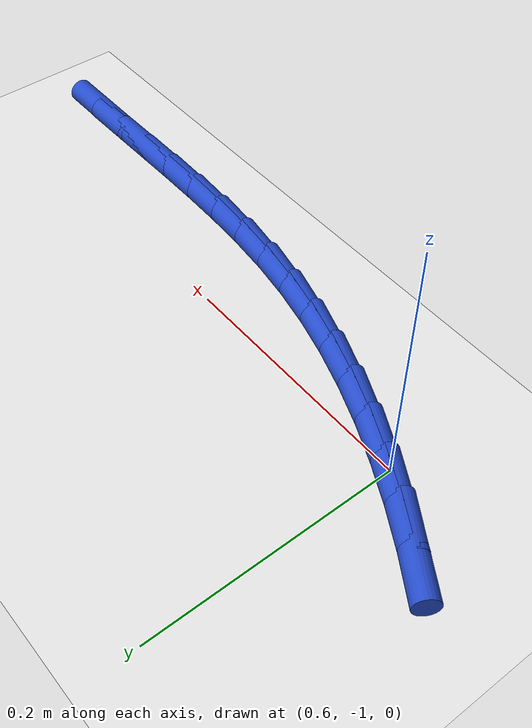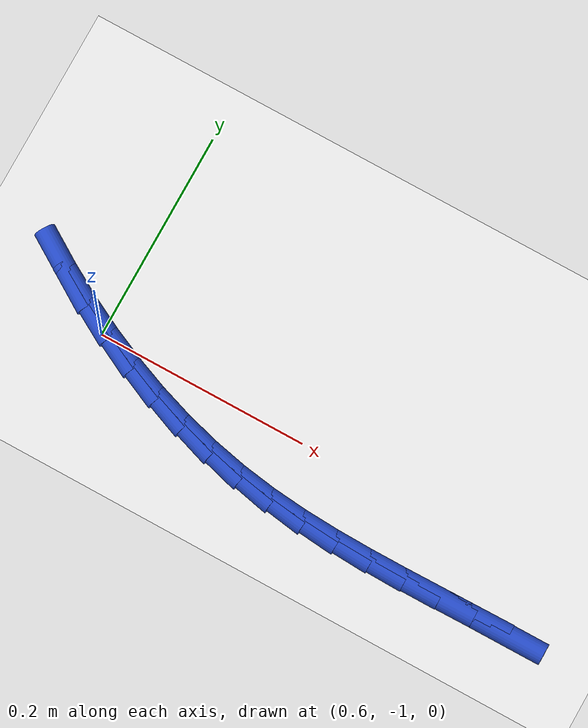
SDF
<sdf version="1.6">
 <world name="default">
  <model name="ground_plane">
   <static>1</static>
   <link name="link">
    <collision name="collision">
     <geometry><plane><normal>0 0 1</normal><size>100 100</size></plane></geometry>
     <surface><friction><ode><mu>100</mu><mu2>50</mu2></ode></friction></surface>
    </collision>
    <visual name="visual">
     <cast_shadows>0</cast_shadows>
     <geometry><plane><normal>0 0 1</normal><size>100 100</size></plane></geometry>
     <material>
      <script><uri>file://media/materials/scripts/gazebo.material</uri><name>Gazebo/WhiteGlow</name></script>
     </material>
    </visual>
   </link>
  </model>
  <model name="line">
   <link name="link_151">
    <pose>1.0335236570125084 -1.062545441056187 0.01 0 1.57 0.002684595539576238</pose>
    <collision name="collision">
     <geometry><cylinder><radius>0.01</radius><length>0.08</length></cylinder></geometry>
    </collision>
    <visual name="visual">
     <material>
      <script><name>Gazebo/Blue</name><uri>file://media/materials/scripts/gazebo.material</uri></script>
     </material>
     <geometry><cylinder><radius>0.01</radius><length>0.08</length></cylinder></geometry>
    </visual>
   </link>
   <link name="link_152">
    <pose>0.9995417740888854 -1.0626366688866715 0.01 0 1.57 0.011953753636433504</pose>
    <collision name="collision">
     <geometry><cylinder><radius>0.01</radius><length>0.08</length></cylinder></geometry>
    </collision>
    <visual name="visual">
     <material>
      <script><name>Gazebo/Blue</name><uri>file://media/materials/scripts/gazebo.material</uri></script>
     </material>
     <geometry><cylinder><radius>0.01</radius><length>0.08</length></cylinder></geometry>
    </visual>
   </link>
   <link name="link_153">
    <pose>0.9656387769463836 -1.0630419562663722 0.01 0 1.57 0.010904461498126752</pose>
    <collision name="collision">
     <geometry><cylinder><radius>0.01</radius><length>0.08</length></cylinder></geometry>
    </collision>
    <visual name="visual">
     <material>
      <script><name>Gazebo/Blue</name><uri>file://media/materials/scripts/gazebo.material</uri></script>
     </material>
     <geometry><cylinder><radius>0.01</radius><length>0.08</length></cylinder></geometry>
    </visual>
   </link>
   <link name="link_154">
    <pose>0.9318352426259818 -1.063410580215676 0.01 0 1.57 -0.0005570223359668431</pose>
    <collision name="collision">
     <geometry><cylinder><radius>0.01</radius><length>0.08</length></cylinder></geometry>
    </collision>
    <visual name="visual">
     <material>
      <script><name>Gazebo/Blue</name><uri>file://media/materials/scripts/gazebo.material</uri></script>
     </material>
     <geometry><cylinder><radius>0.01</radius><length>0.08</length></cylinder></geometry>
    </visual>
   </link>
   <link name="link_155">
    <pose>0.8981517481686585 -1.0633918177549693 0.01 0 1.57 -0.022560480539654353</pose>
    <collision name="collision">
     <geometry><cylinder><radius>0.01</radius><length>0.08</length></cylinder></geometry>
    </collision>
    <visual name="visual">
     <material>
      <script><name>Gazebo/Blue</name><uri>file://media/materials/scripts/gazebo.material</uri></script>
     </material>
     <geometry><cylinder><radius>0.01</radius><length>0.08</length></cylinder></geometry>
    </visual>
   </link>
   <link name="link_156">
    <pose>0.864608870615393 -1.0626349459046396 0.01 0 1.57 -0.055234686714401536</pose>
    <collision name="collision">
     <geometry><cylinder><radius>0.01</radius><length>0.08</length></cylinder></geometry>
    </collision>
    <visual name="visual">
     <material>
      <script><name>Gazebo/Blue</name><uri>file://media/materials/scripts/gazebo.material</uri></script>
     </material>
     <geometry><cylinder><radius>0.01</radius><length>0.08</length></cylinder></geometry>
    </visual>
   </link>
   <link name="link_157">
    <pose>0.8312271870071636 -1.0607892416850728 0.01 0 1.57 -0.09863276526069331</pose>
    <collision name="collision">
     <geometry><cylinder><radius>0.01</radius><length>0.08</length></cylinder></geometry>
    </collision>
    <visual name="visual">
     <material>
      <script><name>Gazebo/Blue</name><uri>file://media/materials/scripts/gazebo.material</uri></script>
     </material>
     <geometry><cylinder><radius>0.01</radius><length>0.08</length></cylinder></geometry>
    </visual>
   </link>
   <link name="link_158">
    <pose>0.7980272743849492 -1.057503982116656 0.01 0 1.57 -0.15260415056625176</pose>
    <collision name="collision">
     <geometry><cylinder><radius>0.01</radius><length>0.08</length></cylinder></geometry>
    </collision>
    <visual name="visual">
     <material>
      <script><name>Gazebo/Blue</name><uri>file://media/materials/scripts/gazebo.material</uri></script>
     </material>
     <geometry><cylinder><radius>0.01</radius><length>0.08</length></cylinder></geometry>
    </visual>
   </link>
   <link name="link_159">
    <pose>0.7650297771914185 -1.0524289701157115 0.01 0 1.57 -0.21309043666609587</pose>
    <collision name="collision">
     <geometry><cylinder><radius>0.01</radius><length>0.08</length></cylinder></geometry>
    </collision>
    <visual name="visual">
     <material>
      <script><name>Gazebo/Blue</name><uri>file://media/materials/scripts/gazebo.material</uri></script>
     </material>
     <geometry><cylinder><radius>0.01</radius><length>0.08</length></cylinder></geometry>
    </visual>
   </link>
   <link name="link_160">
    <pose>0.7322716038141456 -1.0453409066410146 0.01 0 1.57 -0.2715453668928099</pose>
    <collision name="collision">
     <geometry><cylinder><radius>0.01</radius><length>0.08</length></cylinder></geometry>
    </collision>
    <visual name="visual">
     <material>
      <script><name>Gazebo/Blue</name><uri>file://media/materials/scripts/gazebo.material</uri></script>
     </material>
     <geometry><cylinder><radius>0.01</radius><length>0.08</length></cylinder></geometry>
    </visual>
   </link>
   <link name="link_161">
    <pose>0.699826971028241 -1.0363075881618722 0.01 0 1.57 -0.3269708530723729</pose>
    <collision name="collision">
     <geometry><cylinder><radius>0.01</radius><length>0.08</length></cylinder></geometry>
    </collision>
    <visual name="visual">
     <material>
      <script><name>Gazebo/Blue</name><uri>file://media/materials/scripts/gazebo.material</uri></script>
     </material>
     <geometry><cylinder><radius>0.01</radius><length>0.08</length></cylinder></geometry>
    </visual>
   </link>
   <link name="link_162">
    <pose>0.6677753058638615 -1.0254374637180452 0.01 0 1.57 -0.37959900299126503</pose>
    <collision name="collision">
     <geometry><cylinder><radius>0.01</radius><length>0.08</length></cylinder></geometry>
    </collision>
    <visual name="visual">
     <material>
      <script><name>Gazebo/Blue</name><uri>file://media/materials/scripts/gazebo.material</uri></script>
     </material>
     <geometry><cylinder><radius>0.01</radius><length>0.08</length></cylinder></geometry>
    </visual>
   </link>
   <link name="link_163">
    <pose>0.6361960353511644 -1.0128389823492954 0.01 0 1.57 -0.42969503055097674</pose>
    <collision name="collision">
     <geometry><cylinder><radius>0.01</radius><length>0.08</length></cylinder></geometry>
    </collision>
    <visual name="visual">
     <material>
      <script><name>Gazebo/Blue</name><uri>file://media/materials/scripts/gazebo.material</uri></script>
     </material>
     <geometry><cylinder><radius>0.01</radius><length>0.08</length></cylinder></geometry>
    </visual>
   </link>
   <link name="link_164">
    <pose>0.6051685865203068 -0.9986205930953836 0.01 0 1.57 -0.4775445819613131</pose>
    <collision name="collision">
     <geometry><cylinder><radius>0.01</radius><length>0.08</length></cylinder></geometry>
    </collision>
    <visual name="visual">
     <material>
      <script><name>Gazebo/Blue</name><uri>file://media/materials/scripts/gazebo.material</uri></script>
     </material>
     <geometry><cylinder><radius>0.01</radius><length>0.08</length></cylinder></geometry>
    </visual>
   </link>
   <link name="link_165">
    <pose>0.5747723864014462 -0.9828907449960721 0.01 0 1.57 -0.5234449600855143</pose>
    <collision name="collision">
     <geometry><cylinder><radius>0.01</radius><length>0.08</length></cylinder></geometry>
    </collision>
    <visual name="visual">
     <material>
      <script><name>Gazebo/Blue</name><uri>file://media/materials/scripts/gazebo.material</uri></script>
     </material>
     <geometry><cylinder><radius>0.01</radius><length>0.08</length></cylinder></geometry>
    </visual>
   </link>
   <link name="link_166">
    <pose>0.5450868620247395 -0.9657578870911218 0.01 0 1.57 -0.5676997047004216</pose>
    <collision name="collision">
     <geometry><cylinder><radius>0.01</radius><length>0.08</length></cylinder></geometry>
    </collision>
    <visual name="visual">
     <material>
      <script><name>Gazebo/Blue</name><uri>file://media/materials/scripts/gazebo.material</uri></script>
     </material>
     <geometry><cylinder><radius>0.01</radius><length>0.08</length></cylinder></geometry>
    </visual>
   </link>
  </model>
 </world>
</sdf>
